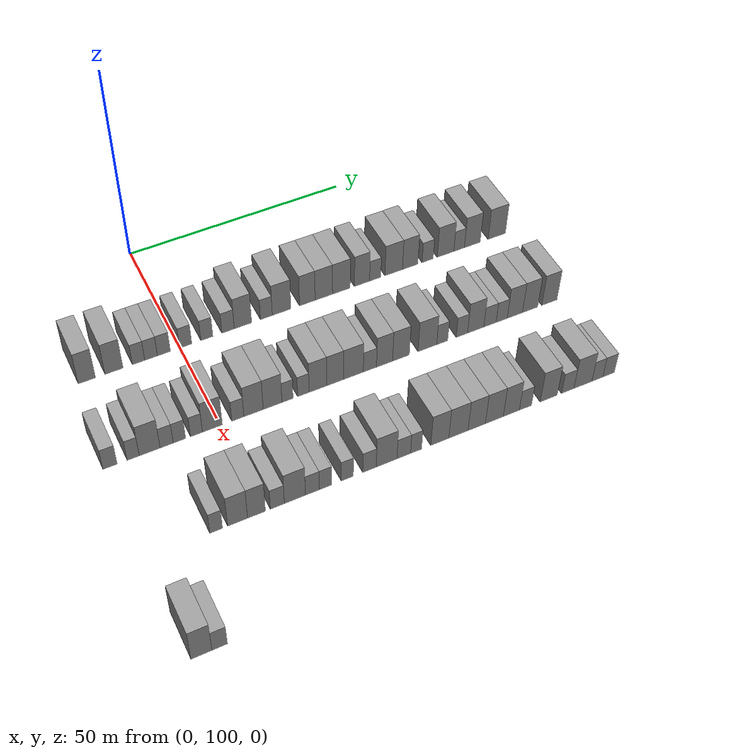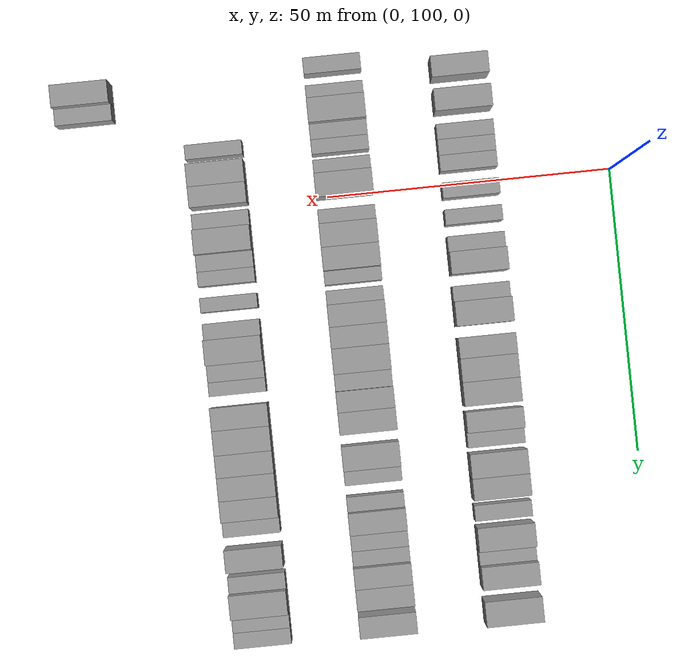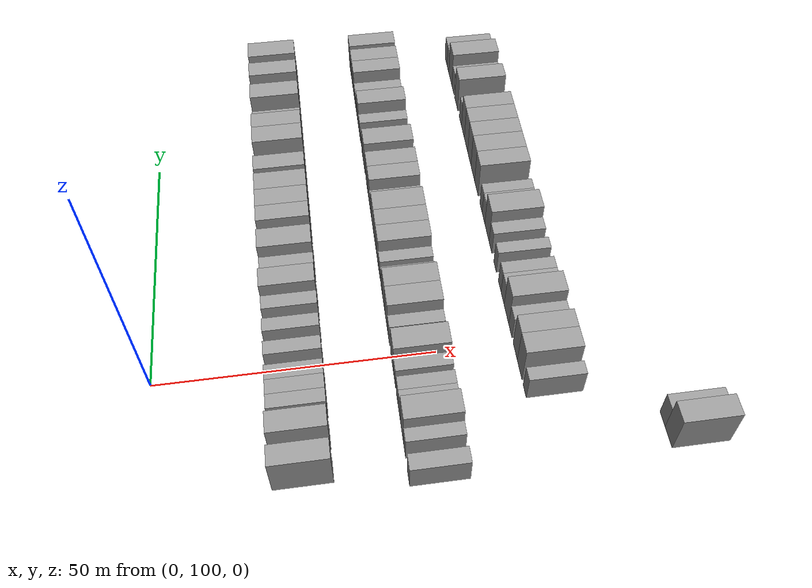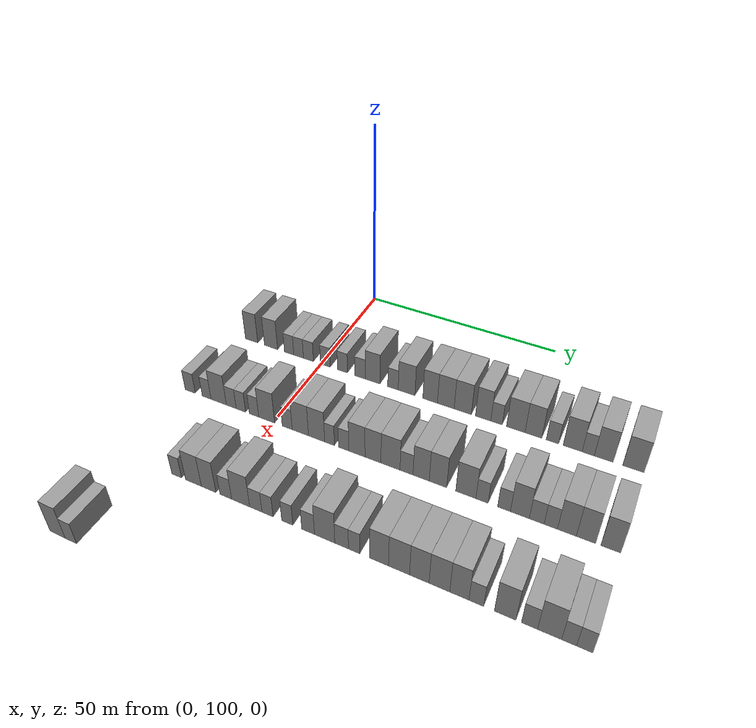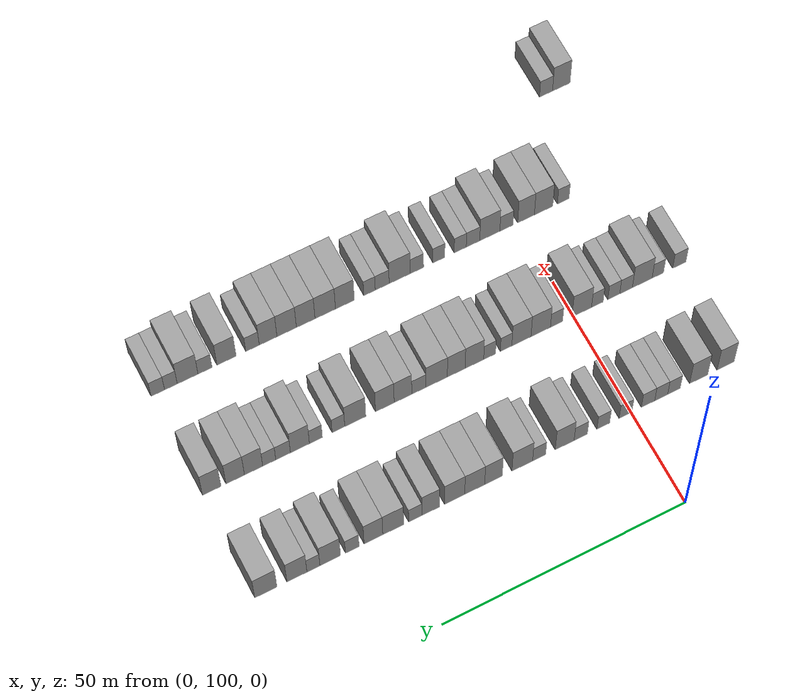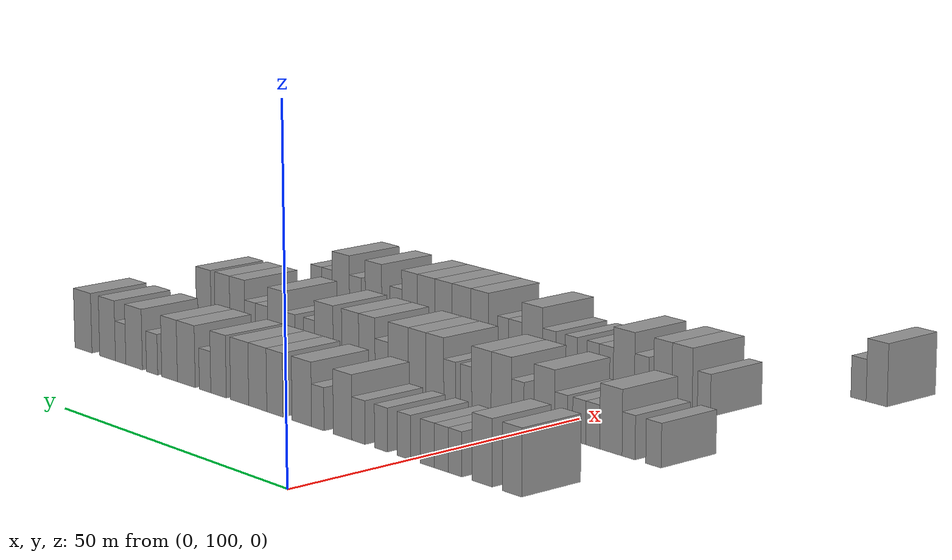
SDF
<sdf version="1.6">
 <world name="default">
  <model name="building_115">
   <static>1</static>
   <pose>25.0000 79.9441 0 0.000000 0.000000 0.000000</pose>
   <link name="link">
    <pose>0 0 4.50 0 0 0</pose>
    <collision name="collision"><geometry><box><size>10.0000 3.6590 9.0000</size></box></geometry></collision>
    <visual name="visual">
     <cast_shadows>0</cast_shadows>
     <geometry><box><size>10.0000 3.6590 9.0000</size></box></geometry>
     <material>
      <script>
       <uri>model://grey_wall/materials/scripts</uri>
       <uri>model://grey_wall/materials/textures</uri>
       <name>vrc/grey_wall</name>
      </script>
     </material>
    </visual>
   </link>
  </model>
  <model name="building_116">
   <static>1</static>
   <pose>25.0000 85.7078 0 0.000000 0.000000 0.000000</pose>
   <link name="link">
    <pose>0 0 4.50 0 0 0</pose>
    <collision name="collision"><geometry><box><size>10.0000 3.8683 9.0000</size></box></geometry></collision>
    <visual name="visual">
     <cast_shadows>0</cast_shadows>
     <geometry><box><size>10.0000 3.8683 9.0000</size></box></geometry>
     <material>
      <script>
       <uri>model://grey_wall/materials/scripts</uri>
       <uri>model://grey_wall/materials/textures</uri>
       <name>vrc/grey_wall</name>
      </script>
     </material>
    </visual>
   </link>
  </model>
  <model name="building_117">
   <static>1</static>
   <pose>25.0000 90.9737 0 0.000000 0.000000 0.000000</pose>
   <link name="link">
    <pose>0 0 3.00 0 0 0</pose>
    <collision name="collision"><geometry><box><size>10.0000 2.6635 6.0000</size></box></geometry></collision>
    <visual name="visual">
     <cast_shadows>0</cast_shadows>
     <geometry><box><size>10.0000 2.6635 6.0000</size></box></geometry>
     <material>
      <script>
       <uri>model://grey_wall/materials/scripts</uri>
       <uri>model://grey_wall/materials/textures</uri>
       <name>vrc/grey_wall</name>
      </script>
     </material>
    </visual>
   </link>
  </model>
  <model name="building_118">
   <static>1</static>
   <pose>25.0000 93.6869 0 0.000000 0.000000 0.000000</pose>
   <link name="link">
    <pose>0 0 3.00 0 0 0</pose>
    <collision name="collision"><geometry><box><size>10.0000 2.7629 6.0000</size></box></geometry></collision>
    <visual name="visual">
     <cast_shadows>0</cast_shadows>
     <geometry><box><size>10.0000 2.7629 6.0000</size></box></geometry>
     <material>
      <script>
       <uri>model://grey_wall/materials/scripts</uri>
       <uri>model://grey_wall/materials/textures</uri>
       <name>vrc/grey_wall</name>
      </script>
     </material>
    </visual>
   </link>
  </model>
  <model name="building_119">
   <static>1</static>
   <pose>25.0000 96.4809 0 0.000000 0.000000 0.000000</pose>
   <link name="link">
    <pose>0 0 3.00 0 0 0</pose>
    <collision name="collision"><geometry><box><size>10.0000 2.8250 6.0000</size></box></geometry></collision>
    <visual name="visual">
     <cast_shadows>0</cast_shadows>
     <geometry><box><size>10.0000 2.8250 6.0000</size></box></geometry>
     <material>
      <script>
       <uri>model://grey_wall/materials/scripts</uri>
       <uri>model://grey_wall/materials/textures</uri>
       <name>vrc/grey_wall</name>
      </script>
     </material>
    </visual>
   </link>
  </model>
  <model name="building_120">
   <static>1</static>
   <pose>25.0000 101.2464 0 0.000000 0.000000 0.000000</pose>
   <link name="link">
    <pose>0 0 3.00 0 0 0</pose>
    <collision name="collision"><geometry><box><size>10.0000 2.7061 6.0000</size></box></geometry></collision>
    <visual name="visual">
     <cast_shadows>0</cast_shadows>
     <geometry><box><size>10.0000 2.7061 6.0000</size></box></geometry>
     <material>
      <script>
       <uri>model://grey_wall/materials/scripts</uri>
       <uri>model://grey_wall/materials/textures</uri>
       <name>vrc/grey_wall</name>
      </script>
     </material>
    </visual>
   </link>
  </model>
  <model name="building_121">
   <static>1</static>
   <pose>25.0000 105.9428 0 0.000000 0.000000 0.000000</pose>
   <link name="link">
    <pose>0 0 3.00 0 0 0</pose>
    <collision name="collision"><geometry><box><size>10.0000 2.6867 6.0000</size></box></geometry></collision>
    <visual name="visual">
     <cast_shadows>0</cast_shadows>
     <geometry><box><size>10.0000 2.6867 6.0000</size></box></geometry>
     <material>
      <script>
       <uri>model://grey_wall/materials/scripts</uri>
       <uri>model://grey_wall/materials/textures</uri>
       <name>vrc/grey_wall</name>
      </script>
     </material>
    </visual>
   </link>
  </model>
  <model name="building_122">
   <static>1</static>
   <pose>25.0000 110.6799 0 0.000000 0.000000 0.000000</pose>
   <link name="link">
    <pose>0 0 3.00 0 0 0</pose>
    <collision name="collision"><geometry><box><size>10.0000 2.7877 6.0000</size></box></geometry></collision>
    <visual name="visual">
     <cast_shadows>0</cast_shadows>
     <geometry><box><size>10.0000 2.7877 6.0000</size></box></geometry>
     <material>
      <script>
       <uri>model://grey_wall/materials/scripts</uri>
       <uri>model://grey_wall/materials/textures</uri>
       <name>vrc/grey_wall</name>
      </script>
     </material>
    </visual>
   </link>
  </model>
  <model name="building_123">
   <static>1</static>
   <pose>25.0000 114.0450 0 0.000000 0.000000 0.000000</pose>
   <link name="link">
    <pose>0 0 4.50 0 0 0</pose>
    <collision name="collision"><geometry><box><size>10.0000 3.9424 9.0000</size></box></geometry></collision>
    <visual name="visual">
     <cast_shadows>0</cast_shadows>
     <geometry><box><size>10.0000 3.9424 9.0000</size></box></geometry>
     <material>
      <script>
       <uri>model://grey_wall/materials/scripts</uri>
       <uri>model://grey_wall/materials/textures</uri>
       <name>vrc/grey_wall</name>
      </script>
     </material>
    </visual>
   </link>
  </model>
  <model name="building_124">
   <static>1</static>
   <pose>25.0000 119.3702 0 0.000000 0.000000 0.000000</pose>
   <link name="link">
    <pose>0 0 3.00 0 0 0</pose>
    <collision name="collision"><geometry><box><size>10.0000 2.7081 6.0000</size></box></geometry></collision>
    <visual name="visual">
     <cast_shadows>0</cast_shadows>
     <geometry><box><size>10.0000 2.7081 6.0000</size></box></geometry>
     <material>
      <script>
       <uri>model://grey_wall/materials/scripts</uri>
       <uri>model://grey_wall/materials/textures</uri>
       <name>vrc/grey_wall</name>
      </script>
     </material>
    </visual>
   </link>
  </model>
  <model name="building_125">
   <static>1</static>
   <pose>25.0000 122.8714 0 0.000000 0.000000 0.000000</pose>
   <link name="link">
    <pose>0 0 4.50 0 0 0</pose>
    <collision name="collision"><geometry><box><size>10.0000 4.2944 9.0000</size></box></geometry></collision>
    <visual name="visual">
     <cast_shadows>0</cast_shadows>
     <geometry><box><size>10.0000 4.2944 9.0000</size></box></geometry>
     <material>
      <script>
       <uri>model://grey_wall/materials/scripts</uri>
       <uri>model://grey_wall/materials/textures</uri>
       <name>vrc/grey_wall</name>
      </script>
     </material>
    </visual>
   </link>
  </model>
  <model name="building_126">
   <static>1</static>
   <pose>25.0000 128.8364 0 0.000000 0.000000 0.000000</pose>
   <link name="link">
    <pose>0 0 4.50 0 0 0</pose>
    <collision name="collision"><geometry><box><size>10.0000 3.6356 9.0000</size></box></geometry></collision>
    <visual name="visual">
     <cast_shadows>0</cast_shadows>
     <geometry><box><size>10.0000 3.6356 9.0000</size></box></geometry>
     <material>
      <script>
       <uri>model://grey_wall/materials/scripts</uri>
       <uri>model://grey_wall/materials/textures</uri>
       <name>vrc/grey_wall</name>
      </script>
     </material>
    </visual>
   </link>
  </model>
  <model name="building_127">
   <static>1</static>
   <pose>25.0000 132.7111 0 0.000000 0.000000 0.000000</pose>
   <link name="link">
    <pose>0 0 4.50 0 0 0</pose>
    <collision name="collision"><geometry><box><size>10.0000 4.1137 9.0000</size></box></geometry></collision>
    <visual name="visual">
     <cast_shadows>0</cast_shadows>
     <geometry><box><size>10.0000 4.1137 9.0000</size></box></geometry>
     <material>
      <script>
       <uri>model://grey_wall/materials/scripts</uri>
       <uri>model://grey_wall/materials/textures</uri>
       <name>vrc/grey_wall</name>
      </script>
     </material>
    </visual>
   </link>
  </model>
  <model name="building_128">
   <static>1</static>
   <pose>25.0000 136.8517 0 0.000000 0.000000 0.000000</pose>
   <link name="link">
    <pose>0 0 4.50 0 0 0</pose>
    <collision name="collision"><geometry><box><size>10.0000 4.1676 9.0000</size></box></geometry></collision>
    <visual name="visual">
     <cast_shadows>0</cast_shadows>
     <geometry><box><size>10.0000 4.1676 9.0000</size></box></geometry>
     <material>
      <script>
       <uri>model://grey_wall/materials/scripts</uri>
       <uri>model://grey_wall/materials/textures</uri>
       <name>vrc/grey_wall</name>
      </script>
     </material>
    </visual>
   </link>
  </model>
  <model name="building_129">
   <static>1</static>
   <pose>25.0000 141.7489 0 0.000000 0.000000 0.000000</pose>
   <link name="link">
    <pose>0 0 4.50 0 0 0</pose>
    <collision name="collision"><geometry><box><size>10.0000 3.6270 9.0000</size></box></geometry></collision>
    <visual name="visual">
     <cast_shadows>0</cast_shadows>
     <geometry><box><size>10.0000 3.6270 9.0000</size></box></geometry>
     <material>
      <script>
       <uri>model://grey_wall/materials/scripts</uri>
       <uri>model://grey_wall/materials/textures</uri>
       <name>vrc/grey_wall</name>
      </script>
     </material>
    </visual>
   </link>
  </model>
  <model name="building_130">
   <static>1</static>
   <pose>25.0000 144.9116 0 0.000000 0.000000 0.000000</pose>
   <link name="link">
    <pose>0 0 3.00 0 0 0</pose>
    <collision name="collision"><geometry><box><size>10.0000 2.6984 6.0000</size></box></geometry></collision>
    <visual name="visual">
     <cast_shadows>0</cast_shadows>
     <geometry><box><size>10.0000 2.6984 6.0000</size></box></geometry>
     <material>
      <script>
       <uri>model://grey_wall/materials/scripts</uri>
       <uri>model://grey_wall/materials/textures</uri>
       <name>vrc/grey_wall</name>
      </script>
     </material>
    </visual>
   </link>
  </model>
  <model name="building_131">
   <static>1</static>
   <pose>25.0000 149.3931 0 0.000000 0.000000 0.000000</pose>
   <link name="link">
    <pose>0 0 4.50 0 0 0</pose>
    <collision name="collision"><geometry><box><size>10.0000 4.2646 9.0000</size></box></geometry></collision>
    <visual name="visual">
     <cast_shadows>0</cast_shadows>
     <geometry><box><size>10.0000 4.2646 9.0000</size></box></geometry>
     <material>
      <script>
       <uri>model://grey_wall/materials/scripts</uri>
       <uri>model://grey_wall/materials/textures</uri>
       <name>vrc/grey_wall</name>
      </script>
     </material>
    </visual>
   </link>
  </model>
  <model name="building_132">
   <static>1</static>
   <pose>25.0000 153.4267 0 0.000000 0.000000 0.000000</pose>
   <link name="link">
    <pose>0 0 4.50 0 0 0</pose>
    <collision name="collision"><geometry><box><size>10.0000 3.8026 9.0000</size></box></geometry></collision>
    <visual name="visual">
     <cast_shadows>0</cast_shadows>
     <geometry><box><size>10.0000 3.8026 9.0000</size></box></geometry>
     <material>
      <script>
       <uri>model://grey_wall/materials/scripts</uri>
       <uri>model://grey_wall/materials/textures</uri>
       <name>vrc/grey_wall</name>
      </script>
     </material>
    </visual>
   </link>
  </model>
  <model name="building_133">
   <static>1</static>
   <pose>25.0000 157.7071 0 0.000000 0.000000 0.000000</pose>
   <link name="link">
    <pose>0 0 3.00 0 0 0</pose>
    <collision name="collision"><geometry><box><size>10.0000 2.7583 6.0000</size></box></geometry></collision>
    <visual name="visual">
     <cast_shadows>0</cast_shadows>
     <geometry><box><size>10.0000 2.7583 6.0000</size></box></geometry>
     <material>
      <script>
       <uri>model://grey_wall/materials/scripts</uri>
       <uri>model://grey_wall/materials/textures</uri>
       <name>vrc/grey_wall</name>
      </script>
     </material>
    </visual>
   </link>
  </model>
  <model name="building_134">
   <static>1</static>
   <pose>25.0000 162.1594 0 0.000000 0.000000 0.000000</pose>
   <link name="link">
    <pose>0 0 4.50 0 0 0</pose>
    <collision name="collision"><geometry><box><size>10.0000 4.1462 9.0000</size></box></geometry></collision>
    <visual name="visual">
     <cast_shadows>0</cast_shadows>
     <geometry><box><size>10.0000 4.1462 9.0000</size></box></geometry>
     <material>
      <script>
       <uri>model://grey_wall/materials/scripts</uri>
       <uri>model://grey_wall/materials/textures</uri>
       <name>vrc/grey_wall</name>
      </script>
     </material>
    </visual>
   </link>
  </model>
  <model name="building_135">
   <static>1</static>
   <pose>25.0000 165.5441 0 0.000000 0.000000 0.000000</pose>
   <link name="link">
    <pose>0 0 3.00 0 0 0</pose>
    <collision name="collision"><geometry><box><size>10.0000 2.6232 6.0000</size></box></geometry></collision>
    <visual name="visual">
     <cast_shadows>0</cast_shadows>
     <geometry><box><size>10.0000 2.6232 6.0000</size></box></geometry>
     <material>
      <script>
       <uri>model://grey_wall/materials/scripts</uri>
       <uri>model://grey_wall/materials/textures</uri>
       <name>vrc/grey_wall</name>
      </script>
     </material>
    </visual>
   </link>
  </model>
  <model name="building_136">
   <static>1</static>
   <pose>25.0000 168.8602 0 0.000000 0.000000 0.000000</pose>
   <link name="link">
    <pose>0 0 4.50 0 0 0</pose>
    <collision name="collision"><geometry><box><size>10.0000 4.0091 9.0000</size></box></geometry></collision>
    <visual name="visual">
     <cast_shadows>0</cast_shadows>
     <geometry><box><size>10.0000 4.0091 9.0000</size></box></geometry>
     <material>
      <script>
       <uri>model://grey_wall/materials/scripts</uri>
       <uri>model://grey_wall/materials/textures</uri>
       <name>vrc/grey_wall</name>
      </script>
     </material>
    </visual>
   </link>
  </model>
  <model name="building_137">
   <static>1</static>
   <pose>25.0000 175.0820 0 0.000000 0.000000 0.000000</pose>
   <link name="link">
    <pose>0 0 4.50 0 0 0</pose>
    <collision name="collision"><geometry><box><size>10.0000 4.4344 9.0000</size></box></geometry></collision>
    <visual name="visual">
     <cast_shadows>0</cast_shadows>
     <geometry><box><size>10.0000 4.4344 9.0000</size></box></geometry>
     <material>
      <script>
       <uri>model://grey_wall/materials/scripts</uri>
       <uri>model://grey_wall/materials/textures</uri>
       <name>vrc/grey_wall</name>
      </script>
     </material>
    </visual>
   </link>
  </model>
  <model name="building_303">
   <static>1</static>
   <pose>47.0000 77.2383 0 0.000000 0.000000 0.000000</pose>
   <link name="link">
    <pose>0 0 3.00 0 0 0</pose>
    <collision name="collision"><geometry><box><size>10.0000 2.8685 6.0000</size></box></geometry></collision>
    <visual name="visual">
     <cast_shadows>0</cast_shadows>
     <geometry><box><size>10.0000 2.8685 6.0000</size></box></geometry>
     <material>
      <script>
       <uri>model://grey_wall/materials/scripts</uri>
       <uri>model://grey_wall/materials/textures</uri>
       <name>vrc/grey_wall</name>
      </script>
     </material>
    </visual>
   </link>
  </model>
  <model name="building_304">
   <static>1</static>
   <pose>47.0000 81.9047 0 0.000000 0.000000 0.000000</pose>
   <link name="link">
    <pose>0 0 3.00 0 0 0</pose>
    <collision name="collision"><geometry><box><size>10.0000 2.4643 6.0000</size></box></geometry></collision>
    <visual name="visual">
     <cast_shadows>0</cast_shadows>
     <geometry><box><size>10.0000 2.4643 6.0000</size></box></geometry>
     <material>
      <script>
       <uri>model://grey_wall/materials/scripts</uri>
       <uri>model://grey_wall/materials/textures</uri>
       <name>vrc/grey_wall</name>
      </script>
     </material>
    </visual>
   </link>
  </model>
  <model name="building_305">
   <static>1</static>
   <pose>47.0000 85.2720 0 0.000000 0.000000 0.000000</pose>
   <link name="link">
    <pose>0 0 4.50 0 0 0</pose>
    <collision name="collision"><geometry><box><size>10.0000 4.2703 9.0000</size></box></geometry></collision>
    <visual name="visual">
     <cast_shadows>0</cast_shadows>
     <geometry><box><size>10.0000 4.2703 9.0000</size></box></geometry>
     <material>
      <script>
       <uri>model://grey_wall/materials/scripts</uri>
       <uri>model://grey_wall/materials/textures</uri>
       <name>vrc/grey_wall</name>
      </script>
     </material>
    </visual>
   </link>
  </model>
  <model name="building_306">
   <static>1</static>
   <pose>47.0000 88.7662 0 0.000000 0.000000 0.000000</pose>
   <link name="link">
    <pose>0 0 3.00 0 0 0</pose>
    <collision name="collision"><geometry><box><size>10.0000 2.7181 6.0000</size></box></geometry></collision>
    <visual name="visual">
     <cast_shadows>0</cast_shadows>
     <geometry><box><size>10.0000 2.7181 6.0000</size></box></geometry>
     <material>
      <script>
       <uri>model://grey_wall/materials/scripts</uri>
       <uri>model://grey_wall/materials/textures</uri>
       <name>vrc/grey_wall</name>
      </script>
     </material>
    </visual>
   </link>
  </model>
  <model name="building_307">
   <static>1</static>
   <pose>47.0000 91.4079 0 0.000000 0.000000 0.000000</pose>
   <link name="link">
    <pose>0 0 3.00 0 0 0</pose>
    <collision name="collision"><geometry><box><size>10.0000 2.5653 6.0000</size></box></geometry></collision>
    <visual name="visual">
     <cast_shadows>0</cast_shadows>
     <geometry><box><size>10.0000 2.5653 6.0000</size></box></geometry>
     <material>
      <script>
       <uri>model://grey_wall/materials/scripts</uri>
       <uri>model://grey_wall/materials/textures</uri>
       <name>vrc/grey_wall</name>
      </script>
     </material>
    </visual>
   </link>
  </model>
  <model name="building_308">
   <static>1</static>
   <pose>47.0000 94.9453 0 0.000000 0.000000 0.000000</pose>
   <link name="link">
    <pose>0 0 3.00 0 0 0</pose>
    <collision name="collision"><geometry><box><size>10.0000 2.5094 6.0000</size></box></geometry></collision>
    <visual name="visual">
     <cast_shadows>0</cast_shadows>
     <geometry><box><size>10.0000 2.5094 6.0000</size></box></geometry>
     <material>
      <script>
       <uri>model://grey_wall/materials/scripts</uri>
       <uri>model://grey_wall/materials/textures</uri>
       <name>vrc/grey_wall</name>
      </script>
     </material>
    </visual>
   </link>
  </model>
  <model name="building_309">
   <static>1</static>
   <pose>47.0000 98.2913 0 0.000000 0.000000 0.000000</pose>
   <link name="link">
    <pose>0 0 4.50 0 0 0</pose>
    <collision name="collision"><geometry><box><size>10.0000 4.1826 9.0000</size></box></geometry></collision>
    <visual name="visual">
     <cast_shadows>0</cast_shadows>
     <geometry><box><size>10.0000 4.1826 9.0000</size></box></geometry>
     <material>
      <script>
       <uri>model://grey_wall/materials/scripts</uri>
       <uri>model://grey_wall/materials/textures</uri>
       <name>vrc/grey_wall</name>
      </script>
     </material>
    </visual>
   </link>
  </model>
  <model name="building_310">
   <static>1</static>
   <pose>47.0000 103.6734 0 0.000000 0.000000 0.000000</pose>
   <link name="link">
    <pose>0 0 3.00 0 0 0</pose>
    <collision name="collision"><geometry><box><size>10.0000 2.5818 6.0000</size></box></geometry></collision>
    <visual name="visual">
     <cast_shadows>0</cast_shadows>
     <geometry><box><size>10.0000 2.5818 6.0000</size></box></geometry>
     <material>
      <script>
       <uri>model://grey_wall/materials/scripts</uri>
       <uri>model://grey_wall/materials/textures</uri>
       <name>vrc/grey_wall</name>
      </script>
     </material>
    </visual>
   </link>
  </model>
  <model name="building_311">
   <static>1</static>
   <pose>47.0000 107.0329 0 0.000000 0.000000 0.000000</pose>
   <link name="link">
    <pose>0 0 4.50 0 0 0</pose>
    <collision name="collision"><geometry><box><size>10.0000 4.1371 9.0000</size></box></geometry></collision>
    <visual name="visual">
     <cast_shadows>0</cast_shadows>
     <geometry><box><size>10.0000 4.1371 9.0000</size></box></geometry>
     <material>
      <script>
       <uri>model://grey_wall/materials/scripts</uri>
       <uri>model://grey_wall/materials/textures</uri>
       <name>vrc/grey_wall</name>
      </script>
     </material>
    </visual>
   </link>
  </model>
  <model name="building_312">
   <static>1</static>
   <pose>47.0000 111.1319 0 0.000000 0.000000 0.000000</pose>
   <link name="link">
    <pose>0 0 4.50 0 0 0</pose>
    <collision name="collision"><geometry><box><size>10.0000 4.0609 9.0000</size></box></geometry></collision>
    <visual name="visual">
     <cast_shadows>0</cast_shadows>
     <geometry><box><size>10.0000 4.0609 9.0000</size></box></geometry>
     <material>
      <script>
       <uri>model://grey_wall/materials/scripts</uri>
       <uri>model://grey_wall/materials/textures</uri>
       <name>vrc/grey_wall</name>
      </script>
     </material>
    </visual>
   </link>
  </model>
  <model name="building_313">
   <static>1</static>
   <pose>47.0000 114.3770 0 0.000000 0.000000 0.000000</pose>
   <link name="link">
    <pose>0 0 3.00 0 0 0</pose>
    <collision name="collision"><geometry><box><size>10.0000 2.4293 6.0000</size></box></geometry></collision>
    <visual name="visual">
     <cast_shadows>0</cast_shadows>
     <geometry><box><size>10.0000 2.4293 6.0000</size></box></geometry>
     <material>
      <script>
       <uri>model://grey_wall/materials/scripts</uri>
       <uri>model://grey_wall/materials/textures</uri>
       <name>vrc/grey_wall</name>
      </script>
     </material>
    </visual>
   </link>
  </model>
  <model name="building_314">
   <static>1</static>
   <pose>47.0000 117.8444 0 0.000000 0.000000 0.000000</pose>
   <link name="link">
    <pose>0 0 3.00 0 0 0</pose>
    <collision name="collision"><geometry><box><size>10.0000 2.5055 6.0000</size></box></geometry></collision>
    <visual name="visual">
     <cast_shadows>0</cast_shadows>
     <geometry><box><size>10.0000 2.5055 6.0000</size></box></geometry>
     <material>
      <script>
       <uri>model://grey_wall/materials/scripts</uri>
       <uri>model://grey_wall/materials/textures</uri>
       <name>vrc/grey_wall</name>
      </script>
     </material>
    </visual>
   </link>
  </model>
  <model name="building_315">
   <static>1</static>
   <pose>47.0000 121.0449 0 0.000000 0.000000 0.000000</pose>
   <link name="link">
    <pose>0 0 4.50 0 0 0</pose>
    <collision name="collision"><geometry><box><size>10.0000 3.8955 9.0000</size></box></geometry></collision>
    <visual name="visual">
     <cast_shadows>0</cast_shadows>
     <geometry><box><size>10.0000 3.8955 9.0000</size></box></geometry>
     <material>
      <script>
       <uri>model://grey_wall/materials/scripts</uri>
       <uri>model://grey_wall/materials/textures</uri>
       <name>vrc/grey_wall</name>
      </script>
     </material>
    </visual>
   </link>
  </model>
  <model name="building_316">
   <static>1</static>
   <pose>47.0000 124.8665 0 0.000000 0.000000 0.000000</pose>
   <link name="link">
    <pose>0 0 4.50 0 0 0</pose>
    <collision name="collision"><geometry><box><size>10.0000 3.7479 9.0000</size></box></geometry></collision>
    <visual name="visual">
     <cast_shadows>0</cast_shadows>
     <geometry><box><size>10.0000 3.7479 9.0000</size></box></geometry>
     <material>
      <script>
       <uri>model://grey_wall/materials/scripts</uri>
       <uri>model://grey_wall/materials/textures</uri>
       <name>vrc/grey_wall</name>
      </script>
     </material>
    </visual>
   </link>
  </model>
  <model name="building_317">
   <static>1</static>
   <pose>47.0000 128.9663 0 0.000000 0.000000 0.000000</pose>
   <link name="link">
    <pose>0 0 4.50 0 0 0</pose>
    <collision name="collision"><geometry><box><size>10.0000 4.4516 9.0000</size></box></geometry></collision>
    <visual name="visual">
     <cast_shadows>0</cast_shadows>
     <geometry><box><size>10.0000 4.4516 9.0000</size></box></geometry>
     <material>
      <script>
       <uri>model://grey_wall/materials/scripts</uri>
       <uri>model://grey_wall/materials/textures</uri>
       <name>vrc/grey_wall</name>
      </script>
     </material>
    </visual>
   </link>
  </model>
  <model name="building_318">
   <static>1</static>
   <pose>47.0000 132.6814 0 0.000000 0.000000 0.000000</pose>
   <link name="link">
    <pose>0 0 3.00 0 0 0</pose>
    <collision name="collision"><geometry><box><size>10.0000 2.9786 6.0000</size></box></geometry></collision>
    <visual name="visual">
     <cast_shadows>0</cast_shadows>
     <geometry><box><size>10.0000 2.9786 6.0000</size></box></geometry>
     <material>
      <script>
       <uri>model://grey_wall/materials/scripts</uri>
       <uri>model://grey_wall/materials/textures</uri>
       <name>vrc/grey_wall</name>
      </script>
     </material>
    </visual>
   </link>
  </model>
  <model name="building_319">
   <static>1</static>
   <pose>47.0000 136.0028 0 0.000000 0.000000 0.000000</pose>
   <link name="link">
    <pose>0 0 4.50 0 0 0</pose>
    <collision name="collision"><geometry><box><size>10.0000 3.6643 9.0000</size></box></geometry></collision>
    <visual name="visual">
     <cast_shadows>0</cast_shadows>
     <geometry><box><size>10.0000 3.6643 9.0000</size></box></geometry>
     <material>
      <script>
       <uri>model://grey_wall/materials/scripts</uri>
       <uri>model://grey_wall/materials/textures</uri>
       <name>vrc/grey_wall</name>
      </script>
     </material>
    </visual>
   </link>
  </model>
  <model name="building_320">
   <static>1</static>
   <pose>47.0000 139.7730 0 0.000000 0.000000 0.000000</pose>
   <link name="link">
    <pose>0 0 4.50 0 0 0</pose>
    <collision name="collision"><geometry><box><size>10.0000 3.8761 9.0000</size></box></geometry></collision>
    <visual name="visual">
     <cast_shadows>0</cast_shadows>
     <geometry><box><size>10.0000 3.8761 9.0000</size></box></geometry>
     <material>
      <script>
       <uri>model://grey_wall/materials/scripts</uri>
       <uri>model://grey_wall/materials/textures</uri>
       <name>vrc/grey_wall</name>
      </script>
     </material>
    </visual>
   </link>
  </model>
  <model name="building_321">
   <static>1</static>
   <pose>47.0000 145.8849 0 0.000000 0.000000 0.000000</pose>
   <link name="link">
    <pose>0 0 4.50 0 0 0</pose>
    <collision name="collision"><geometry><box><size>10.0000 4.3477 9.0000</size></box></geometry></collision>
    <visual name="visual">
     <cast_shadows>0</cast_shadows>
     <geometry><box><size>10.0000 4.3477 9.0000</size></box></geometry>
     <material>
      <script>
       <uri>model://grey_wall/materials/scripts</uri>
       <uri>model://grey_wall/materials/textures</uri>
       <name>vrc/grey_wall</name>
      </script>
     </material>
    </visual>
   </link>
  </model>
  <model name="building_322">
   <static>1</static>
   <pose>47.0000 149.3601 0 0.000000 0.000000 0.000000</pose>
   <link name="link">
    <pose>0 0 3.00 0 0 0</pose>
    <collision name="collision"><geometry><box><size>10.0000 2.6026 6.0000</size></box></geometry></collision>
    <visual name="visual">
     <cast_shadows>0</cast_shadows>
     <geometry><box><size>10.0000 2.6026 6.0000</size></box></geometry>
     <material>
      <script>
       <uri>model://grey_wall/materials/scripts</uri>
       <uri>model://grey_wall/materials/textures</uri>
       <name>vrc/grey_wall</name>
      </script>
     </material>
    </visual>
   </link>
  </model>
  <model name="building_323">
   <static>1</static>
   <pose>47.0000 153.9944 0 0.000000 0.000000 0.000000</pose>
   <link name="link">
    <pose>0 0 3.00 0 0 0</pose>
    <collision name="collision"><geometry><box><size>10.0000 2.6661 6.0000</size></box></geometry></collision>
    <visual name="visual">
     <cast_shadows>0</cast_shadows>
     <geometry><box><size>10.0000 2.6661 6.0000</size></box></geometry>
     <material>
      <script>
       <uri>model://grey_wall/materials/scripts</uri>
       <uri>model://grey_wall/materials/textures</uri>
       <name>vrc/grey_wall</name>
      </script>
     </material>
    </visual>
   </link>
  </model>
  <model name="building_324">
   <static>1</static>
   <pose>47.0000 157.2693 0 0.000000 0.000000 0.000000</pose>
   <link name="link">
    <pose>0 0 4.50 0 0 0</pose>
    <collision name="collision"><geometry><box><size>10.0000 3.8836 9.0000</size></box></geometry></collision>
    <visual name="visual">
     <cast_shadows>0</cast_shadows>
     <geometry><box><size>10.0000 3.8836 9.0000</size></box></geometry>
     <material>
      <script>
       <uri>model://grey_wall/materials/scripts</uri>
       <uri>model://grey_wall/materials/textures</uri>
       <name>vrc/grey_wall</name>
      </script>
     </material>
    </visual>
   </link>
  </model>
  <model name="building_325">
   <static>1</static>
   <pose>47.0000 160.7059 0 0.000000 0.000000 0.000000</pose>
   <link name="link">
    <pose>0 0 3.00 0 0 0</pose>
    <collision name="collision"><geometry><box><size>10.0000 2.9897 6.0000</size></box></geometry></collision>
    <visual name="visual">
     <cast_shadows>0</cast_shadows>
     <geometry><box><size>10.0000 2.9897 6.0000</size></box></geometry>
     <material>
      <script>
       <uri>model://grey_wall/materials/scripts</uri>
       <uri>model://grey_wall/materials/textures</uri>
       <name>vrc/grey_wall</name>
      </script>
     </material>
    </visual>
   </link>
  </model>
  <model name="building_326">
   <static>1</static>
   <pose>47.0000 163.5340 0 0.000000 0.000000 0.000000</pose>
   <link name="link">
    <pose>0 0 3.00 0 0 0</pose>
    <collision name="collision"><geometry><box><size>10.0000 2.6665 6.0000</size></box></geometry></collision>
    <visual name="visual">
     <cast_shadows>0</cast_shadows>
     <geometry><box><size>10.0000 2.6665 6.0000</size></box></geometry>
     <material>
      <script>
       <uri>model://grey_wall/materials/scripts</uri>
       <uri>model://grey_wall/materials/textures</uri>
       <name>vrc/grey_wall</name>
      </script>
     </material>
    </visual>
   </link>
  </model>
  <model name="building_327">
   <static>1</static>
   <pose>47.0000 166.7240 0 0.000000 0.000000 0.000000</pose>
   <link name="link">
    <pose>0 0 4.50 0 0 0</pose>
    <collision name="collision"><geometry><box><size>10.0000 3.7134 9.0000</size></box></geometry></collision>
    <visual name="visual">
     <cast_shadows>0</cast_shadows>
     <geometry><box><size>10.0000 3.7134 9.0000</size></box></geometry>
     <material>
      <script>
       <uri>model://grey_wall/materials/scripts</uri>
       <uri>model://grey_wall/materials/textures</uri>
       <name>vrc/grey_wall</name>
      </script>
     </material>
    </visual>
   </link>
  </model>
  <model name="building_328">
   <static>1</static>
   <pose>47.0000 170.4507 0 0.000000 0.000000 0.000000</pose>
   <link name="link">
    <pose>0 0 4.50 0 0 0</pose>
    <collision name="collision"><geometry><box><size>10.0000 3.7400 9.0000</size></box></geometry></collision>
    <visual name="visual">
     <cast_shadows>0</cast_shadows>
     <geometry><box><size>10.0000 3.7400 9.0000</size></box></geometry>
     <material>
      <script>
       <uri>model://grey_wall/materials/scripts</uri>
       <uri>model://grey_wall/materials/textures</uri>
       <name>vrc/grey_wall</name>
      </script>
     </material>
    </visual>
   </link>
  </model>
  <model name="building_329">
   <static>1</static>
   <pose>47.0000 175.1988 0 0.000000 0.000000 0.000000</pose>
   <link name="link">
    <pose>0 0 4.50 0 0 0</pose>
    <collision name="collision"><geometry><box><size>10.0000 3.7563 9.0000</size></box></geometry></collision>
    <visual name="visual">
     <cast_shadows>0</cast_shadows>
     <geometry><box><size>10.0000 3.7563 9.0000</size></box></geometry>
     <material>
      <script>
       <uri>model://grey_wall/materials/scripts</uri>
       <uri>model://grey_wall/materials/textures</uri>
       <name>vrc/grey_wall</name>
      </script>
     </material>
    </visual>
   </link>
  </model>
  <model name="building_490">
   <static>1</static>
   <pose>69.0000 90.1467 0 0.000000 0.000000 0.000000</pose>
   <link name="link">
    <pose>0 0 3.00 0 0 0</pose>
    <collision name="collision"><geometry><box><size>10.0000 2.5259 6.0000</size></box></geometry></collision>
    <visual name="visual">
     <cast_shadows>0</cast_shadows>
     <geometry><box><size>10.0000 2.5259 6.0000</size></box></geometry>
     <material>
      <script>
       <uri>model://grey_wall/materials/scripts</uri>
       <uri>model://grey_wall/materials/textures</uri>
       <name>vrc/grey_wall</name>
      </script>
     </material>
    </visual>
   </link>
  </model>
  <model name="building_491">
   <static>1</static>
   <pose>69.0000 94.4067 0 0.000000 0.000000 0.000000</pose>
   <link name="link">
    <pose>0 0 4.50 0 0 0</pose>
    <collision name="collision"><geometry><box><size>10.0000 3.9941 9.0000</size></box></geometry></collision>
    <visual name="visual">
     <cast_shadows>0</cast_shadows>
     <geometry><box><size>10.0000 3.9941 9.0000</size></box></geometry>
     <material>
      <script>
       <uri>model://grey_wall/materials/scripts</uri>
       <uri>model://grey_wall/materials/textures</uri>
       <name>vrc/grey_wall</name>
      </script>
     </material>
    </visual>
   </link>
  </model>
  <model name="building_492">
   <static>1</static>
   <pose>69.0000 98.2089 0 0.000000 0.000000 0.000000</pose>
   <link name="link">
    <pose>0 0 4.50 0 0 0</pose>
    <collision name="collision"><geometry><box><size>10.0000 3.6103 9.0000</size></box></geometry></collision>
    <visual name="visual">
     <cast_shadows>0</cast_shadows>
     <geometry><box><size>10.0000 3.6103 9.0000</size></box></geometry>
     <material>
      <script>
       <uri>model://grey_wall/materials/scripts</uri>
       <uri>model://grey_wall/materials/textures</uri>
       <name>vrc/grey_wall</name>
      </script>
     </material>
    </visual>
   </link>
  </model>
  <model name="building_493">
   <static>1</static>
   <pose>69.0000 102.4387 0 0.000000 0.000000 0.000000</pose>
   <link name="link">
    <pose>0 0 3.00 0 0 0</pose>
    <collision name="collision"><geometry><box><size>10.0000 2.8492 6.0000</size></box></geometry></collision>
    <visual name="visual">
     <cast_shadows>0</cast_shadows>
     <geometry><box><size>10.0000 2.8492 6.0000</size></box></geometry>
     <material>
      <script>
       <uri>model://grey_wall/materials/scripts</uri>
       <uri>model://grey_wall/materials/textures</uri>
       <name>vrc/grey_wall</name>
      </script>
     </material>
    </visual>
   </link>
  </model>
  <model name="building_494">
   <static>1</static>
   <pose>69.0000 106.0229 0 0.000000 0.000000 0.000000</pose>
   <link name="link">
    <pose>0 0 4.50 0 0 0</pose>
    <collision name="collision"><geometry><box><size>10.0000 4.3193 9.0000</size></box></geometry></collision>
    <visual name="visual">
     <cast_shadows>0</cast_shadows>
     <geometry><box><size>10.0000 4.3193 9.0000</size></box></geometry>
     <material>
      <script>
       <uri>model://grey_wall/materials/scripts</uri>
       <uri>model://grey_wall/materials/textures</uri>
       <name>vrc/grey_wall</name>
      </script>
     </material>
    </visual>
   </link>
  </model>
  <model name="building_495">
   <static>1</static>
   <pose>69.0000 109.6367 0 0.000000 0.000000 0.000000</pose>
   <link name="link">
    <pose>0 0 3.00 0 0 0</pose>
    <collision name="collision"><geometry><box><size>10.0000 2.9082 6.0000</size></box></geometry></collision>
    <visual name="visual">
     <cast_shadows>0</cast_shadows>
     <geometry><box><size>10.0000 2.9082 6.0000</size></box></geometry>
     <material>
      <script>
       <uri>model://grey_wall/materials/scripts</uri>
       <uri>model://grey_wall/materials/textures</uri>
       <name>vrc/grey_wall</name>
      </script>
     </material>
    </visual>
   </link>
  </model>
  <model name="building_496">
   <static>1</static>
   <pose>69.0000 112.3800 0 0.000000 0.000000 0.000000</pose>
   <link name="link">
    <pose>0 0 3.00 0 0 0</pose>
    <collision name="collision"><geometry><box><size>10.0000 2.5785 6.0000</size></box></geometry></collision>
    <visual name="visual">
     <cast_shadows>0</cast_shadows>
     <geometry><box><size>10.0000 2.5785 6.0000</size></box></geometry>
     <material>
      <script>
       <uri>model://grey_wall/materials/scripts</uri>
       <uri>model://grey_wall/materials/textures</uri>
       <name>vrc/grey_wall</name>
      </script>
     </material>
    </visual>
   </link>
  </model>
  <model name="building_497">
   <static>1</static>
   <pose>69.0000 116.9374 0 0.000000 0.000000 0.000000</pose>
   <link name="link">
    <pose>0 0 3.00 0 0 0</pose>
    <collision name="collision"><geometry><box><size>10.0000 2.5363 6.0000</size></box></geometry></collision>
    <visual name="visual">
     <cast_shadows>0</cast_shadows>
     <geometry><box><size>10.0000 2.5363 6.0000</size></box></geometry>
     <material>
      <script>
       <uri>model://grey_wall/materials/scripts</uri>
       <uri>model://grey_wall/materials/textures</uri>
       <name>vrc/grey_wall</name>
      </script>
     </material>
    </visual>
   </link>
  </model>
  <model name="building_498">
   <static>1</static>
   <pose>69.0000 121.6318 0 0.000000 0.000000 0.000000</pose>
   <link name="link">
    <pose>0 0 3.00 0 0 0</pose>
    <collision name="collision"><geometry><box><size>10.0000 2.8524 6.0000</size></box></geometry></collision>
    <visual name="visual">
     <cast_shadows>0</cast_shadows>
     <geometry><box><size>10.0000 2.8524 6.0000</size></box></geometry>
     <material>
      <script>
       <uri>model://grey_wall/materials/scripts</uri>
       <uri>model://grey_wall/materials/textures</uri>
       <name>vrc/grey_wall</name>
      </script>
     </material>
    </visual>
   </link>
  </model>
  <model name="building_499">
   <static>1</static>
   <pose>69.0000 125.2840 0 0.000000 0.000000 0.000000</pose>
   <link name="link">
    <pose>0 0 4.50 0 0 0</pose>
    <collision name="collision"><geometry><box><size>10.0000 4.4520 9.0000</size></box></geometry></collision>
    <visual name="visual">
     <cast_shadows>0</cast_shadows>
     <geometry><box><size>10.0000 4.4520 9.0000</size></box></geometry>
     <material>
      <script>
       <uri>model://grey_wall/materials/scripts</uri>
       <uri>model://grey_wall/materials/textures</uri>
       <name>vrc/grey_wall</name>
      </script>
     </material>
    </visual>
   </link>
  </model>
  <model name="building_500">
   <static>1</static>
   <pose>69.0000 128.9819 0 0.000000 0.000000 0.000000</pose>
   <link name="link">
    <pose>0 0 3.00 0 0 0</pose>
    <collision name="collision"><geometry><box><size>10.0000 2.9438 6.0000</size></box></geometry></collision>
    <visual name="visual">
     <cast_shadows>0</cast_shadows>
     <geometry><box><size>10.0000 2.9438 6.0000</size></box></geometry>
     <material>
      <script>
       <uri>model://grey_wall/materials/scripts</uri>
       <uri>model://grey_wall/materials/textures</uri>
       <name>vrc/grey_wall</name>
      </script>
     </material>
    </visual>
   </link>
  </model>
  <model name="building_501">
   <static>1</static>
   <pose>69.0000 131.6644 0 0.000000 0.000000 0.000000</pose>
   <link name="link">
    <pose>0 0 3.00 0 0 0</pose>
    <collision name="collision"><geometry><box><size>10.0000 2.4213 6.0000</size></box></geometry></collision>
    <visual name="visual">
     <cast_shadows>0</cast_shadows>
     <geometry><box><size>10.0000 2.4213 6.0000</size></box></geometry>
     <material>
      <script>
       <uri>model://grey_wall/materials/scripts</uri>
       <uri>model://grey_wall/materials/textures</uri>
       <name>vrc/grey_wall</name>
      </script>
     </material>
    </visual>
   </link>
  </model>
  <model name="building_502">
   <static>1</static>
   <pose>69.0000 136.8580 0 0.000000 0.000000 0.000000</pose>
   <link name="link">
    <pose>0 0 4.50 0 0 0</pose>
    <collision name="collision"><geometry><box><size>10.0000 3.9658 9.0000</size></box></geometry></collision>
    <visual name="visual">
     <cast_shadows>0</cast_shadows>
     <geometry><box><size>10.0000 3.9658 9.0000</size></box></geometry>
     <material>
      <script>
       <uri>model://grey_wall/materials/scripts</uri>
       <uri>model://grey_wall/materials/textures</uri>
       <name>vrc/grey_wall</name>
      </script>
     </material>
    </visual>
   </link>
  </model>
  <model name="building_503">
   <static>1</static>
   <pose>69.0000 140.9819 0 0.000000 0.000000 0.000000</pose>
   <link name="link">
    <pose>0 0 4.50 0 0 0</pose>
    <collision name="collision"><geometry><box><size>10.0000 4.2822 9.0000</size></box></geometry></collision>
    <visual name="visual">
     <cast_shadows>0</cast_shadows>
     <geometry><box><size>10.0000 4.2822 9.0000</size></box></geometry>
     <material>
      <script>
       <uri>model://grey_wall/materials/scripts</uri>
       <uri>model://grey_wall/materials/textures</uri>
       <name>vrc/grey_wall</name>
      </script>
     </material>
    </visual>
   </link>
  </model>
  <model name="building_504">
   <static>1</static>
   <pose>69.0000 145.0707 0 0.000000 0.000000 0.000000</pose>
   <link name="link">
    <pose>0 0 4.50 0 0 0</pose>
    <collision name="collision"><geometry><box><size>10.0000 3.8954 9.0000</size></box></geometry></collision>
    <visual name="visual">
     <cast_shadows>0</cast_shadows>
     <geometry><box><size>10.0000 3.8954 9.0000</size></box></geometry>
     <material>
      <script>
       <uri>model://grey_wall/materials/scripts</uri>
       <uri>model://grey_wall/materials/textures</uri>
       <name>vrc/grey_wall</name>
      </script>
     </material>
    </visual>
   </link>
  </model>
  <model name="building_505">
   <static>1</static>
   <pose>69.0000 149.0413 0 0.000000 0.000000 0.000000</pose>
   <link name="link">
    <pose>0 0 4.50 0 0 0</pose>
    <collision name="collision"><geometry><box><size>10.0000 4.0457 9.0000</size></box></geometry></collision>
    <visual name="visual">
     <cast_shadows>0</cast_shadows>
     <geometry><box><size>10.0000 4.0457 9.0000</size></box></geometry>
     <material>
      <script>
       <uri>model://grey_wall/materials/scripts</uri>
       <uri>model://grey_wall/materials/textures</uri>
       <name>vrc/grey_wall</name>
      </script>
     </material>
    </visual>
   </link>
  </model>
  <model name="building_506">
   <static>1</static>
   <pose>69.0000 152.9022 0 0.000000 0.000000 0.000000</pose>
   <link name="link">
    <pose>0 0 4.50 0 0 0</pose>
    <collision name="collision"><geometry><box><size>10.0000 3.6762 9.0000</size></box></geometry></collision>
    <visual name="visual">
     <cast_shadows>0</cast_shadows>
     <geometry><box><size>10.0000 3.6762 9.0000</size></box></geometry>
     <material>
      <script>
       <uri>model://grey_wall/materials/scripts</uri>
       <uri>model://grey_wall/materials/textures</uri>
       <name>vrc/grey_wall</name>
      </script>
     </material>
    </visual>
   </link>
  </model>
  <model name="building_507">
   <static>1</static>
   <pose>69.0000 156.1415 0 0.000000 0.000000 0.000000</pose>
   <link name="link">
    <pose>0 0 3.00 0 0 0</pose>
    <collision name="collision"><geometry><box><size>10.0000 2.8024 6.0000</size></box></geometry></collision>
    <visual name="visual">
     <cast_shadows>0</cast_shadows>
     <geometry><box><size>10.0000 2.8024 6.0000</size></box></geometry>
     <material>
      <script>
       <uri>model://grey_wall/materials/scripts</uri>
       <uri>model://grey_wall/materials/textures</uri>
       <name>vrc/grey_wall</name>
      </script>
     </material>
    </visual>
   </link>
  </model>
  <model name="building_508">
   <static>1</static>
   <pose>69.0000 161.5246 0 0.000000 0.000000 0.000000</pose>
   <link name="link">
    <pose>0 0 4.50 0 0 0</pose>
    <collision name="collision"><geometry><box><size>10.0000 3.9639 9.0000</size></box></geometry></collision>
    <visual name="visual">
     <cast_shadows>0</cast_shadows>
     <geometry><box><size>10.0000 3.9639 9.0000</size></box></geometry>
     <material>
      <script>
       <uri>model://grey_wall/materials/scripts</uri>
       <uri>model://grey_wall/materials/textures</uri>
       <name>vrc/grey_wall</name>
      </script>
     </material>
    </visual>
   </link>
  </model>
  <model name="building_509">
   <static>1</static>
   <pose>69.0000 165.9516 0 0.000000 0.000000 0.000000</pose>
   <link name="link">
    <pose>0 0 3.00 0 0 0</pose>
    <collision name="collision"><geometry><box><size>10.0000 2.8901 6.0000</size></box></geometry></collision>
    <visual name="visual">
     <cast_shadows>0</cast_shadows>
     <geometry><box><size>10.0000 2.8901 6.0000</size></box></geometry>
     <material>
      <script>
       <uri>model://grey_wall/materials/scripts</uri>
       <uri>model://grey_wall/materials/textures</uri>
       <name>vrc/grey_wall</name>
      </script>
     </material>
    </visual>
   </link>
  </model>
  <model name="building_510">
   <static>1</static>
   <pose>69.0000 169.5228 0 0.000000 0.000000 0.000000</pose>
   <link name="link">
    <pose>0 0 4.50 0 0 0</pose>
    <collision name="collision"><geometry><box><size>10.0000 4.2521 9.0000</size></box></geometry></collision>
    <visual name="visual">
     <cast_shadows>0</cast_shadows>
     <geometry><box><size>10.0000 4.2521 9.0000</size></box></geometry>
     <material>
      <script>
       <uri>model://grey_wall/materials/scripts</uri>
       <uri>model://grey_wall/materials/textures</uri>
       <name>vrc/grey_wall</name>
      </script>
     </material>
    </visual>
   </link>
  </model>
  <model name="building_511">
   <static>1</static>
   <pose>69.0000 172.9485 0 0.000000 0.000000 0.000000</pose>
   <link name="link">
    <pose>0 0 3.00 0 0 0</pose>
    <collision name="collision"><geometry><box><size>10.0000 2.5994 6.0000</size></box></geometry></collision>
    <visual name="visual">
     <cast_shadows>0</cast_shadows>
     <geometry><box><size>10.0000 2.5994 6.0000</size></box></geometry>
     <material>
      <script>
       <uri>model://grey_wall/materials/scripts</uri>
       <uri>model://grey_wall/materials/textures</uri>
       <name>vrc/grey_wall</name>
      </script>
     </material>
    </visual>
   </link>
  </model>
  <model name="building_512">
   <static>1</static>
   <pose>69.0000 175.6344 0 0.000000 0.000000 0.000000</pose>
   <link name="link">
    <pose>0 0 3.00 0 0 0</pose>
    <collision name="collision"><geometry><box><size>10.0000 2.7723 6.0000</size></box></geometry></collision>
    <visual name="visual">
     <cast_shadows>0</cast_shadows>
     <geometry><box><size>10.0000 2.7723 6.0000</size></box></geometry>
     <material>
      <script>
       <uri>model://grey_wall/materials/scripts</uri>
       <uri>model://grey_wall/materials/textures</uri>
       <name>vrc/grey_wall</name>
      </script>
     </material>
    </visual>
   </link>
  </model>
  <model name="building_686">
   <static>1</static>
   <pose>91.0000 78.4795 0 0.000000 0.000000 0.000000</pose>
   <link name="link">
    <pose>0 0 4.50 0 0 0</pose>
    <collision name="collision"><geometry><box><size>10.0000 3.8818 9.0000</size></box></geometry></collision>
    <visual name="visual">
     <cast_shadows>0</cast_shadows>
     <geometry><box><size>10.0000 3.8818 9.0000</size></box></geometry>
     <material>
      <script>
       <uri>model://grey_wall/materials/scripts</uri>
       <uri>model://grey_wall/materials/textures</uri>
       <name>vrc/grey_wall</name>
      </script>
     </material>
    </visual>
   </link>
  </model>
  <model name="building_687">
   <static>1</static>
   <pose>91.0000 81.8575 0 0.000000 0.000000 0.000000</pose>
   <link name="link">
    <pose>0 0 3.00 0 0 0</pose>
    <collision name="collision"><geometry><box><size>10.0000 2.8744 6.0000</size></box></geometry></collision>
    <visual name="visual">
     <cast_shadows>0</cast_shadows>
     <geometry><box><size>10.0000 2.8744 6.0000</size></box></geometry>
     <material>
      <script>
       <uri>model://grey_wall/materials/scripts</uri>
       <uri>model://grey_wall/materials/textures</uri>
       <name>vrc/grey_wall</name>
      </script>
     </material>
    </visual>
   </link>
  </model>
 </world>
</sdf>
